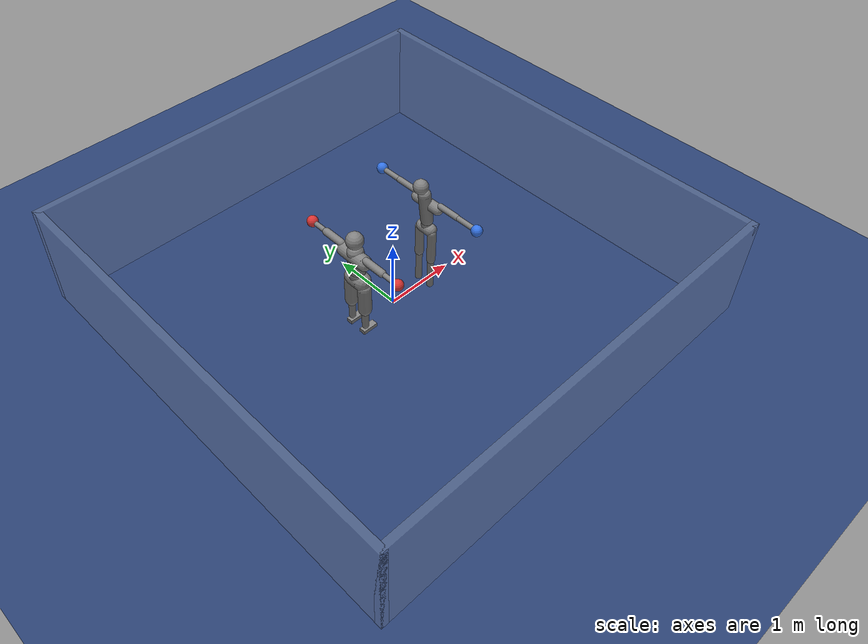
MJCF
<mujoco model="lilmatt_vs_zombie_spar">
  <compiler angle="degree" inertiafromgeom="true" autolimits="true"/>
  <option timestep="0.005" iterations="10" ls_iterations="10" integrator="implicitfast">
    <flag eulerdamp="disable"/>
  </option>
  <default>
    <geom contype="1" conaffinity="1" condim="3" friction="1.0 0.005 0.0001" density="1000" margin="0"/>
    <joint limited="true"/>
    <position ctrllimited="true"/>
  </default>
  <asset>
    <texture name="grid" type="2d" builtin="checker" rgb1=".18 .28 .48" rgb2=".14 .22 .40" width="300" height="300"/>
    <material name="grid" texture="grid" texrepeat="6 6" reflectance="0"/>
  </asset>
  <worldbody>
    <light pos="0 0 5" dir="0 0 -1" directional="true"/>
    <geom name="floor" type="plane" size="0 0 0.05" material="grid" friction="1.0 0.005 0.0001"/>
    <geom name="rope_n" type="box" pos="0.0000 3.1000 0.7500" size="3.1500 0.0500 0.7500" rgba="0.8 0.8 0.8 0.15"/>
    <geom name="rope_s" type="box" pos="0.0000 -3.1000 0.7500" size="3.1500 0.0500 0.7500" rgba="0.8 0.8 0.8 0.15"/>
    <geom name="rope_e" type="box" pos="3.1000 0.0000 0.7500" size="0.0500 3.1500 0.7500" rgba="0.8 0.8 0.8 0.15"/>
    <geom name="rope_w" type="box" pos="-3.1000 0.0000 0.7500" size="0.0500 3.1500 0.7500" rgba="0.8 0.8 0.8 0.15"/>
    <body name="a_pelvis" pos="-0.6000 0.0000 0.8672" quat="1.00000 0 0 0.00000">
      <freejoint name="a_root"/>
      <geom name="a_pelvis_geom" type="capsule" fromto="0.0000 -0.0700 0.0000 0.0000 0.0700 0.0000" size="0.1228" mass="6.8132" />
      <geom name="a_pelvis_up" type="capsule" fromto="0.0000 0.0000 0.0000 -0.0066 0.0000 0.1058" size="0.1105" mass="4.6036" />
      <body name="a_torso" pos="-0.0066 0.0000 0.1258">
        <joint name="a_abdomen_z" type="hinge" axis="0 0 1" range="-45 45" damping="0.5" armature="0.08" stiffness="0"/>
        <joint name="a_abdomen_y" type="hinge" axis="0 1 0" range="-60 30" damping="0.5" armature="0.08" stiffness="0"/>
        <joint name="a_abdomen_x" type="hinge" axis="1 0 0" range="-35 35" damping="0.5" armature="0.08" stiffness="0"/>
        <geom name="a_torso_geom" type="capsule" fromto="0.0000 0.0000 0.0200 -0.0181 0.0000 0.3354" size="0.1100" mass="28.5420" />
        <geom name="a_chest_geom" type="capsule" fromto="-0.0347 -0.1786 0.2850 -0.0347 0.1786 0.2850" size="0.0990" mass="0.5"/>
        <geom name="a_head_geom" type="sphere" pos="-0.0217 0.0000 0.5289" size="0.1155" mass="6.5124" />
        <body name="a_upper_arm_l" pos="-0.0434 0.2232 0.3563">
          <joint name="a_shoulder_x_l" type="hinge" axis="1 0 0" range="-170 30" damping="0.5" armature="0.03" stiffness="0"/>
          <joint name="a_shoulder_z_l" type="hinge" axis="0 0 1" range="-110 110" damping="0.5" armature="0.03" stiffness="0"/>
          <geom name="a_upper_arm_l_geom" type="capsule" fromto="0.0000 0.0000 0.0000 0.0000 0.2758 0.0000" size="0.0508" mass="2.2512" />
          <body name="a_forearm_l" pos="0.0000 0.2758 0.0000">
            <joint name="a_elbow_l" type="hinge" axis="0 0 1" range="-150 0" damping="0.5" armature="0.02" stiffness="0"/>
            <geom name="a_forearm_l_geom" type="capsule" fromto="0.0000 0.0000 0.0000 0.0000 0.1970 0.0000" size="0.0332" mass="1.2864" />
            <geom name="a_glove_l" type="sphere" pos="0.0000 0.2645 0.0000" size="0.0750" mass="0.7654" rgba="0.85 0.2 0.2 1"/>
          </body>
        </body>
        <body name="a_upper_arm_r" pos="-0.0434 -0.2232 0.3563">
          <joint name="a_shoulder_x_r" type="hinge" axis="1 0 0" range="-30 170" damping="0.5" armature="0.03" stiffness="0"/>
          <joint name="a_shoulder_z_r" type="hinge" axis="0 0 1" range="-110 110" damping="0.5" armature="0.03" stiffness="0"/>
          <geom name="a_upper_arm_r_geom" type="capsule" fromto="0.0000 0.0000 0.0000 0.0000 -0.2758 0.0000" size="0.0508" mass="2.2512" />
          <body name="a_forearm_r" pos="0.0000 -0.2758 0.0000">
            <joint name="a_elbow_r" type="hinge" axis="0 0 1" range="0 150" damping="0.5" armature="0.02" stiffness="0"/>
            <geom name="a_forearm_r_geom" type="capsule" fromto="0.0000 0.0000 0.0000 0.0000 -0.1970 0.0000" size="0.0332" mass="1.2864" />
            <geom name="a_glove_r" type="sphere" pos="0.0000 -0.2645 0.0000" size="0.0750" mass="0.7654" rgba="0.85 0.2 0.2 1"/>
          </body>
        </body>
      </body>
      <body name="a_thigh_l" pos="-0.0061 0.1244 -0.0919">
        <joint name="a_hip_x_l" type="hinge" axis="1 0 0" range="-40 40" damping="0.5" armature="0.1" stiffness="0"/>
        <joint name="a_hip_z_l" type="hinge" axis="0 0 1" range="-35 35" damping="0.5" armature="0.1" stiffness="0"/>
        <joint name="a_hip_y_l" type="hinge" axis="0 1 0" range="-120 30" damping="0.5" armature="0.1" stiffness="0"/>
        <geom name="a_thigh_l_geom" type="capsule" fromto="0.0000 0.0000 0.0000 0.0000 0.0000 -0.3718" size="0.0895" mass="8.0400" />
        <body name="a_shin_l" pos="0.0000 0.0000 -0.3718">
          <joint name="a_knee_l" type="hinge" axis="0 1 0" range="0 150" damping="0.5" armature="0.1" stiffness="0"/>
          <geom name="a_shin_l_geom" type="capsule" fromto="0.0000 0.0000 0.0000 0.0000 0.0000 -0.3036" size="0.0462" mass="3.7386" />
          <body name="a_foot_l" pos="0.0000 0.0000 -0.3036">
            <joint name="a_ankle_y_l" type="hinge" axis="0 1 0" range="-20 50" damping="0.5" armature="0.03" stiffness="0"/>
            <joint name="a_ankle_x_l" type="hinge" axis="1 0 0" range="-25 25" damping="0.5" armature="0.03" stiffness="0"/>
            <geom name="a_foot_l_geom" type="box" pos="0.0506 0.0000 -0.0797" size="0.1100 0.0450 0.0280" mass="1.1658" friction="1.0 0.005 0.0001"/>
            <site name="a_foot_l_site" pos="0.0506 0.0000 -0.0797" size="0.01"/>
          </body>
        </body>
      </body>
      <body name="a_thigh_r" pos="-0.0061 -0.1244 -0.0919">
        <joint name="a_hip_x_r" type="hinge" axis="1 0 0" range="-40 40" damping="0.5" armature="0.1" stiffness="0"/>
        <joint name="a_hip_z_r" type="hinge" axis="0 0 1" range="-35 35" damping="0.5" armature="0.1" stiffness="0"/>
        <joint name="a_hip_y_r" type="hinge" axis="0 1 0" range="-120 30" damping="0.5" armature="0.1" stiffness="0"/>
        <geom name="a_thigh_r_geom" type="capsule" fromto="0.0000 0.0000 0.0000 0.0000 0.0000 -0.3718" size="0.0895" mass="8.0400" />
        <body name="a_shin_r" pos="0.0000 0.0000 -0.3718">
          <joint name="a_knee_r" type="hinge" axis="0 1 0" range="0 150" damping="0.5" armature="0.1" stiffness="0"/>
          <geom name="a_shin_r_geom" type="capsule" fromto="0.0000 0.0000 0.0000 0.0000 0.0000 -0.3036" size="0.0462" mass="3.7386" />
          <body name="a_foot_r" pos="0.0000 0.0000 -0.3036">
            <joint name="a_ankle_y_r" type="hinge" axis="0 1 0" range="-20 50" damping="0.5" armature="0.03" stiffness="0"/>
            <joint name="a_ankle_x_r" type="hinge" axis="1 0 0" range="-25 25" damping="0.5" armature="0.03" stiffness="0"/>
            <geom name="a_foot_r_geom" type="box" pos="0.0506 0.0000 -0.0797" size="0.1100 0.0450 0.0280" mass="1.1658" friction="1.0 0.005 0.0001"/>
            <site name="a_foot_r_site" pos="0.0506 0.0000 -0.0797" size="0.01"/>
          </body>
        </body>
      </body>
    </body>
    <body name="b_pelvis" pos="0.6000 0.0000 0.9644" quat="0.00000 0 0 1.00000">
      <freejoint name="b_root"/>
      <geom name="b_pelvis_geom" type="capsule" fromto="0.0000 -0.0700 0.0000 0.0000 0.0700 0.0000" size="0.0850" mass="6.9128" />
      <geom name="b_pelvis_up" type="capsule" fromto="0.0000 0.0000 0.0000 -0.0022 -0.0000 0.0934" size="0.0765" mass="4.3194" />
      <body name="b_torso" pos="-0.0022 -0.0000 0.1134">
        <joint name="b_abdomen_z" type="hinge" axis="0 0 1" range="-45 45" damping="0.5" armature="0.08" stiffness="0"/>
        <joint name="b_abdomen_y" type="hinge" axis="0 1 0" range="-60 30" damping="0.5" armature="0.08" stiffness="0"/>
        <joint name="b_abdomen_x" type="hinge" axis="1 0 0" range="-35 35" damping="0.5" armature="0.08" stiffness="0"/>
        <geom name="b_torso_geom" type="capsule" fromto="0.0000 0.0000 0.0200 0.0595 0.0000 0.4721" size="0.0850" mass="28.0805" />
        <geom name="b_chest_geom" type="capsule" fromto="0.0001 -0.1803 0.3067 0.0001 0.1803 0.3067" size="0.0765" mass="0.5"/>
        <geom name="b_head_geom" type="sphere" pos="0.1269 0.0000 0.6388" size="0.1000" mass="6.4071" />
        <body name="b_upper_arm_l" pos="0.0001 0.2254 0.3834">
          <joint name="b_shoulder_x_l" type="hinge" axis="1 0 0" range="-170 30" damping="0.5" armature="0.03" stiffness="0"/>
          <joint name="b_shoulder_z_l" type="hinge" axis="0 0 1" range="-110 110" damping="0.5" armature="0.03" stiffness="0"/>
          <geom name="b_upper_arm_l_geom" type="capsule" fromto="0.0000 0.0000 0.0000 0.0000 0.2836 0.0000" size="0.0400" mass="2.2148" />
          <body name="b_forearm_l" pos="0.0000 0.2836 0.0000">
            <joint name="b_elbow_l" type="hinge" axis="0 0 1" range="-150 0" damping="0.5" armature="0.02" stiffness="0"/>
            <geom name="b_forearm_l_geom" type="capsule" fromto="0.0000 0.0000 0.0000 0.0000 0.2638 0.0000" size="0.0350" mass="1.2656" />
            <geom name="b_glove_l" type="sphere" pos="0.0000 0.3313 0.0000" size="0.0750" mass="0.7576" rgba="0.2 0.45 0.9 1"/>
          </body>
        </body>
        <body name="b_upper_arm_r" pos="0.0001 -0.2254 0.3834">
          <joint name="b_shoulder_x_r" type="hinge" axis="1 0 0" range="-30 170" damping="0.5" armature="0.03" stiffness="0"/>
          <joint name="b_shoulder_z_r" type="hinge" axis="0 0 1" range="-110 110" damping="0.5" armature="0.03" stiffness="0"/>
          <geom name="b_upper_arm_r_geom" type="capsule" fromto="0.0000 0.0000 0.0000 0.0000 -0.2841 0.0000" size="0.0400" mass="2.2148" />
          <body name="b_forearm_r" pos="0.0000 -0.2841 0.0000">
            <joint name="b_elbow_r" type="hinge" axis="0 0 1" range="0 150" damping="0.5" armature="0.02" stiffness="0"/>
            <geom name="b_forearm_r_geom" type="capsule" fromto="0.0000 0.0000 0.0000 0.0000 -0.2545 0.0000" size="0.0350" mass="1.2656" />
            <geom name="b_glove_r" type="sphere" pos="0.0000 -0.3220 0.0000" size="0.0750" mass="0.7576" rgba="0.2 0.45 0.9 1"/>
          </body>
        </body>
      </body>
      <body name="b_thigh_l" pos="0.0114 0.1094 -0.0284">
        <joint name="b_hip_x_l" type="hinge" axis="1 0 0" range="-40 40" damping="0.5" armature="0.1" stiffness="0"/>
        <joint name="b_hip_z_l" type="hinge" axis="0 0 1" range="-35 35" damping="0.5" armature="0.1" stiffness="0"/>
        <joint name="b_hip_y_l" type="hinge" axis="0 1 0" range="-120 30" damping="0.5" armature="0.1" stiffness="0"/>
        <geom name="b_thigh_l_geom" type="capsule" fromto="0.0000 0.0000 0.0000 0.0000 0.0000 -0.4648" size="0.0600" mass="7.9100" />
        <body name="b_shin_l" pos="0.0000 0.0000 -0.4648">
          <joint name="b_knee_l" type="hinge" axis="0 1 0" range="0 150" damping="0.5" armature="0.1" stiffness="0"/>
          <geom name="b_shin_l_geom" type="capsule" fromto="0.0000 0.0000 0.0000 0.0000 0.0000 -0.4873" size="0.0450" mass="3.6781" />
          <body name="b_foot_l" pos="0.0000 0.0000 -0.4873">
            <joint name="b_ankle_y_l" type="hinge" axis="0 1 0" range="-20 50" damping="0.5" armature="0.03" stiffness="0"/>
            <joint name="b_ankle_x_l" type="hinge" axis="1 0 0" range="-25 25" damping="0.5" armature="0.03" stiffness="0"/>
            <geom name="b_foot_l_geom" type="box" pos="0.0610 0.0000 -0.0548" size="0.1325 0.0450 0.0280" mass="1.1469" friction="1.0 0.005 0.0001"/>
            <site name="b_foot_l_site" pos="0.0610 0.0000 -0.0548" size="0.01"/>
          </body>
        </body>
      </body>
      <body name="b_thigh_r" pos="0.0114 -0.1094 -0.0284">
        <joint name="b_hip_x_r" type="hinge" axis="1 0 0" range="-40 40" damping="0.5" armature="0.1" stiffness="0"/>
        <joint name="b_hip_z_r" type="hinge" axis="0 0 1" range="-35 35" damping="0.5" armature="0.1" stiffness="0"/>
        <joint name="b_hip_y_r" type="hinge" axis="0 1 0" range="-120 30" damping="0.5" armature="0.1" stiffness="0"/>
        <geom name="b_thigh_r_geom" type="capsule" fromto="0.0000 0.0000 0.0000 0.0000 0.0000 -0.4584" size="0.0600" mass="7.9100" />
        <body name="b_shin_r" pos="0.0000 0.0000 -0.4584">
          <joint name="b_knee_r" type="hinge" axis="0 1 0" range="0 150" damping="0.5" armature="0.1" stiffness="0"/>
          <geom name="b_shin_r_geom" type="capsule" fromto="0.0000 0.0000 0.0000 0.0000 0.0000 -0.4889" size="0.0450" mass="3.6781" />
          <body name="b_foot_r" pos="0.0000 0.0000 -0.4889">
            <joint name="b_ankle_y_r" type="hinge" axis="0 1 0" range="-20 50" damping="0.5" armature="0.03" stiffness="0"/>
            <joint name="b_ankle_x_r" type="hinge" axis="1 0 0" range="-25 25" damping="0.5" armature="0.03" stiffness="0"/>
            <geom name="b_foot_r_geom" type="box" pos="0.0589 0.0000 -0.0548" size="0.1280 0.0450 0.0280" mass="1.1469" friction="1.0 0.005 0.0001"/>
            <site name="b_foot_r_site" pos="0.0589 0.0000 -0.0548" size="0.01"/>
          </body>
        </body>
      </body>
    </body>
  </worldbody>
  <contact>
    <exclude body1="a_pelvis" body2="a_torso"/>
    <exclude body1="a_pelvis" body2="a_thigh_l"/>
    <exclude body1="a_thigh_l" body2="a_shin_l"/>
    <exclude body1="a_shin_l" body2="a_foot_l"/>
    <exclude body1="a_torso" body2="a_upper_arm_l"/>
    <exclude body1="a_upper_arm_l" body2="a_forearm_l"/>
    <exclude body1="a_pelvis" body2="a_thigh_r"/>
    <exclude body1="a_thigh_r" body2="a_shin_r"/>
    <exclude body1="a_shin_r" body2="a_foot_r"/>
    <exclude body1="a_torso" body2="a_upper_arm_r"/>
    <exclude body1="a_upper_arm_r" body2="a_forearm_r"/>
    <exclude body1="b_pelvis" body2="b_torso"/>
    <exclude body1="b_pelvis" body2="b_thigh_l"/>
    <exclude body1="b_thigh_l" body2="b_shin_l"/>
    <exclude body1="b_shin_l" body2="b_foot_l"/>
    <exclude body1="b_torso" body2="b_upper_arm_l"/>
    <exclude body1="b_upper_arm_l" body2="b_forearm_l"/>
    <exclude body1="b_pelvis" body2="b_thigh_r"/>
    <exclude body1="b_thigh_r" body2="b_shin_r"/>
    <exclude body1="b_shin_r" body2="b_foot_r"/>
    <exclude body1="b_torso" body2="b_upper_arm_r"/>
    <exclude body1="b_upper_arm_r" body2="b_forearm_r"/>
  </contact>
  <actuator>
    <position name="a_abdomen_z" joint="a_abdomen_z" kp="368.1" kv="17.178" forcerange="-139.06 139.06" ctrlrange="-0.7854 0.7854"/>
    <position name="a_abdomen_y" joint="a_abdomen_y" kp="368.1" kv="17.178" forcerange="-139.06 139.06" ctrlrange="-1.0472 0.5236"/>
    <position name="a_abdomen_x" joint="a_abdomen_x" kp="368.1" kv="17.178" forcerange="-139.06 139.06" ctrlrange="-0.6109 0.6109"/>
    <position name="a_shoulder_x_l" joint="a_shoulder_x_l" kp="130.88" kv="6.544" forcerange="-81.8 81.8" ctrlrange="-2.9671 0.5236"/>
    <position name="a_shoulder_z_l" joint="a_shoulder_z_l" kp="130.88" kv="6.544" forcerange="-81.8 81.8" ctrlrange="-1.9199 1.9199"/>
    <position name="a_elbow_l" joint="a_elbow_l" kp="89.98" kv="4.499" forcerange="-57.26 57.26" ctrlrange="-2.6180 0.0000"/>
    <position name="a_shoulder_x_r" joint="a_shoulder_x_r" kp="130.88" kv="6.544" forcerange="-81.8 81.8" ctrlrange="-0.5236 2.9671"/>
    <position name="a_shoulder_z_r" joint="a_shoulder_z_r" kp="130.88" kv="6.544" forcerange="-81.8 81.8" ctrlrange="-1.9199 1.9199"/>
    <position name="a_elbow_r" joint="a_elbow_r" kp="89.98" kv="4.499" forcerange="-57.26 57.26" ctrlrange="0.0000 2.6180"/>
    <position name="a_hip_x_l" joint="a_hip_x_l" kp="490.8" kv="24.54" forcerange="-196.32 196.32" ctrlrange="-0.6981 0.6981"/>
    <position name="a_hip_z_l" joint="a_hip_z_l" kp="490.8" kv="24.54" forcerange="-196.32 196.32" ctrlrange="-0.6109 0.6109"/>
    <position name="a_hip_y_l" joint="a_hip_y_l" kp="490.8" kv="24.54" forcerange="-196.32 196.32" ctrlrange="-2.0944 0.5236"/>
    <position name="a_knee_l" joint="a_knee_l" kp="490.8" kv="24.54" forcerange="-212.68 212.68" ctrlrange="0.0000 2.6180"/>
    <position name="a_ankle_y_l" joint="a_ankle_y_l" kp="613.5" kv="24.54" forcerange="-179.96 179.96" ctrlrange="-0.3491 0.8727"/>
    <position name="a_ankle_x_l" joint="a_ankle_x_l" kp="65.44" kv="3.272" forcerange="-49.08 49.08" ctrlrange="-0.4363 0.4363"/>
    <position name="a_hip_x_r" joint="a_hip_x_r" kp="490.8" kv="24.54" forcerange="-196.32 196.32" ctrlrange="-0.6981 0.6981"/>
    <position name="a_hip_z_r" joint="a_hip_z_r" kp="490.8" kv="24.54" forcerange="-196.32 196.32" ctrlrange="-0.6109 0.6109"/>
    <position name="a_hip_y_r" joint="a_hip_y_r" kp="490.8" kv="24.54" forcerange="-196.32 196.32" ctrlrange="-2.0944 0.5236"/>
    <position name="a_knee_r" joint="a_knee_r" kp="490.8" kv="24.54" forcerange="-212.68 212.68" ctrlrange="0.0000 2.6180"/>
    <position name="a_ankle_y_r" joint="a_ankle_y_r" kp="613.5" kv="24.54" forcerange="-179.96 179.96" ctrlrange="-0.3491 0.8727"/>
    <position name="a_ankle_x_r" joint="a_ankle_x_r" kp="65.44" kv="3.272" forcerange="-49.08 49.08" ctrlrange="-0.4363 0.4363"/>
    <position name="b_abdomen_z" joint="b_abdomen_z" kp="450.0" kv="21.0" forcerange="-170.0 170.0" ctrlrange="-0.7854 0.7854"/>
    <position name="b_abdomen_y" joint="b_abdomen_y" kp="450.0" kv="21.0" forcerange="-170.0 170.0" ctrlrange="-1.0472 0.5236"/>
    <position name="b_abdomen_x" joint="b_abdomen_x" kp="450.0" kv="21.0" forcerange="-170.0 170.0" ctrlrange="-0.6109 0.6109"/>
    <position name="b_shoulder_x_l" joint="b_shoulder_x_l" kp="160.0" kv="8.0" forcerange="-100.0 100.0" ctrlrange="-2.9671 0.5236"/>
    <position name="b_shoulder_z_l" joint="b_shoulder_z_l" kp="160.0" kv="8.0" forcerange="-100.0 100.0" ctrlrange="-1.9199 1.9199"/>
    <position name="b_elbow_l" joint="b_elbow_l" kp="110.0" kv="5.5" forcerange="-70.0 70.0" ctrlrange="-2.6180 0.0000"/>
    <position name="b_shoulder_x_r" joint="b_shoulder_x_r" kp="160.0" kv="8.0" forcerange="-100.0 100.0" ctrlrange="-0.5236 2.9671"/>
    <position name="b_shoulder_z_r" joint="b_shoulder_z_r" kp="160.0" kv="8.0" forcerange="-100.0 100.0" ctrlrange="-1.9199 1.9199"/>
    <position name="b_elbow_r" joint="b_elbow_r" kp="110.0" kv="5.5" forcerange="-70.0 70.0" ctrlrange="0.0000 2.6180"/>
    <position name="b_hip_x_l" joint="b_hip_x_l" kp="600.0" kv="30.0" forcerange="-240.0 240.0" ctrlrange="-0.6981 0.6981"/>
    <position name="b_hip_z_l" joint="b_hip_z_l" kp="600.0" kv="30.0" forcerange="-240.0 240.0" ctrlrange="-0.6109 0.6109"/>
    <position name="b_hip_y_l" joint="b_hip_y_l" kp="600.0" kv="30.0" forcerange="-240.0 240.0" ctrlrange="-2.0944 0.5236"/>
    <position name="b_knee_l" joint="b_knee_l" kp="600.0" kv="30.0" forcerange="-260.0 260.0" ctrlrange="0.0000 2.6180"/>
    <position name="b_ankle_y_l" joint="b_ankle_y_l" kp="750.0" kv="30.0" forcerange="-220.0 220.0" ctrlrange="-0.3491 0.8727"/>
    <position name="b_ankle_x_l" joint="b_ankle_x_l" kp="80.0" kv="4.0" forcerange="-60.0 60.0" ctrlrange="-0.4363 0.4363"/>
    <position name="b_hip_x_r" joint="b_hip_x_r" kp="600.0" kv="30.0" forcerange="-240.0 240.0" ctrlrange="-0.6981 0.6981"/>
    <position name="b_hip_z_r" joint="b_hip_z_r" kp="600.0" kv="30.0" forcerange="-240.0 240.0" ctrlrange="-0.6109 0.6109"/>
    <position name="b_hip_y_r" joint="b_hip_y_r" kp="600.0" kv="30.0" forcerange="-240.0 240.0" ctrlrange="-2.0944 0.5236"/>
    <position name="b_knee_r" joint="b_knee_r" kp="600.0" kv="30.0" forcerange="-260.0 260.0" ctrlrange="0.0000 2.6180"/>
    <position name="b_ankle_y_r" joint="b_ankle_y_r" kp="750.0" kv="30.0" forcerange="-220.0 220.0" ctrlrange="-0.3491 0.8727"/>
    <position name="b_ankle_x_r" joint="b_ankle_x_r" kp="80.0" kv="4.0" forcerange="-60.0 60.0" ctrlrange="-0.4363 0.4363"/>
  </actuator>
  <keyframe>
    <key name="stand" qpos="-0.6000 0.0000 0.8593 1.00000 0 0 0.00000 0.0000 0.0000 0.0000 -1.3265 -0.7330 -1.9548 1.3265 0.7330 1.9548 0.0000 0.0000 -0.1621 0.4538 -0.2916 0.0000 0.0000 0.0000 -0.1621 0.4538 -0.2916 0.0000 0.6000 0.0000 1.0409 0.00000 0 0 1.00000 0.0000 0.0000 0.0000 -1.3265 -0.7330 -1.9548 1.3265 0.7330 1.9548 0.0000 0.0000 -0.2258 0.4538 -0.2279 0.0000 0.0000 0.0000 -0.2258 0.4538 -0.2279 0.0000"/>
  </keyframe>
</mujoco>
